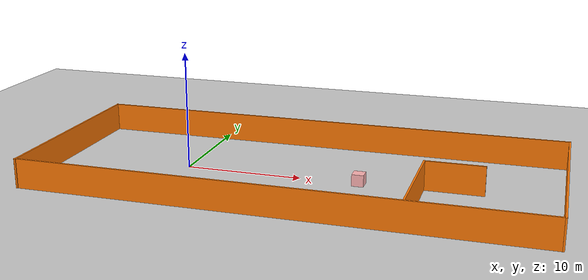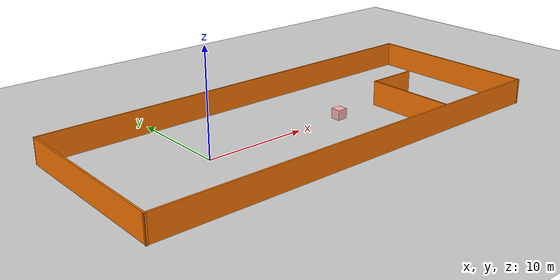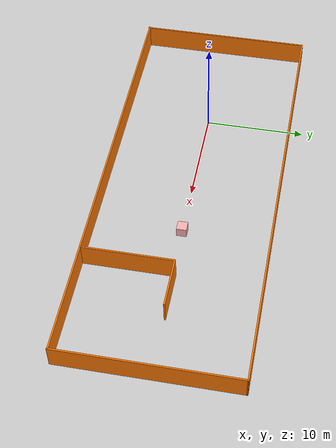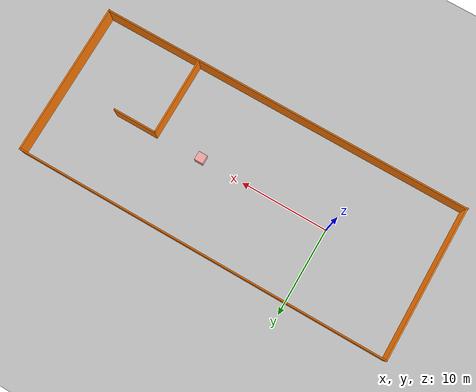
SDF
<sdf version="1.7">
 <world name="default">
  <light name="sun" type="directional">
   <pose>0 0 10 0 -0 0</pose>
   <diffuse>0.8 0.8 0.8 1</diffuse>
   <specular>0.2 0.2 0.2 1</specular>
   <attenuation>
    <range>1000</range>
    <constant>0.9</constant>
    <linear>0.01</linear>
    <quadratic>0.001</quadratic>
   </attenuation>
   <direction>-0.5 0.1 -0.9</direction>
   <spot><inner_angle>0</inner_angle><outer_angle>0</outer_angle><falloff>0</falloff></spot>
  </light>
  <model name="ground_plane">
   <static>1</static>
   <link name="link">
    <collision name="collision">
     <geometry><plane><normal>0 0 1</normal><size>100 100</size></plane></geometry>
     <surface><friction><ode><mu>100</mu><mu2>50</mu2></ode></friction></surface>
    </collision>
    <visual name="visual">
     <cast_shadows>0</cast_shadows>
     <geometry><plane><normal>0 0 1</normal><size>100 100</size></plane></geometry>
     <material>
      <script><uri>file://media/materials/scripts/gazebo.material</uri><name>Gazebo/Grey</name></script>
     </material>
    </visual>
   </link>
  </model>
  <gravity>0 0 -9.8</gravity>
  <magnetic_field>6e-06 2.3e-05 -4.2e-05</magnetic_field>
  <atmosphere type="adiabatic"/>
  <physics type="ode">
   <max_step_size>0.001</max_step_size>
   <real_time_factor>1</real_time_factor>
   <real_time_update_rate>1000</real_time_update_rate>
  </physics>
  <scene><ambient>0.4 0.4 0.4 1</ambient><background>0.7 0.7 0.7 1</background><shadows>1</shadows></scene>
  <spherical_coordinates>
   <surface_model>EARTH_WGS84</surface_model>
   <latitude_deg>0</latitude_deg>
   <longitude_deg>0</longitude_deg>
   <elevation>0</elevation>
   <heading_deg>0</heading_deg>
  </spherical_coordinates>
  <model name="selfdefine1">
   <link name="Wall_37">
    <pose>0.025291 8.67492 0 0 -0 0.002157</pose>
    <visual name="Wall_37_Visual">
     <pose>0 0 1.25 0 -0 0</pose>
     <geometry><box><size>42.6982 0.15 2.5</size></box></geometry>
     <material>
      <script><uri>file://media/materials/scripts/gazebo.material</uri><name>Gazebo/Grey</name></script>
      <ambient>0.996078 0.47451 0.0196078 1</ambient>
      <shader type="pixel"/>
     </material>
     <meta><layer>0</layer></meta>
    </visual>
    <collision name="Wall_37_Collision">
     <pose>0 0 1.25 0 -0 0</pose>
     <geometry><box><size>42.6982 0.15 2.5</size></box></geometry>
     <surface>
      <friction>
       <ode><mu>1</mu><mu2>1</mu2><fdir1>0 0 0</fdir1><slip1>0</slip1><slip2>0</slip2></ode>
       <torsional>
        <coefficient>1</coefficient>
        <patch_radius>0</patch_radius>
        <surface_radius>0</surface_radius>
        <use_patch_radius>1</use_patch_radius>
        <ode><slip>0</slip></ode>
       </torsional>
      </friction>
      <bounce><restitution_coefficient>0</restitution_coefficient><threshold>1e+06</threshold></bounce>
      <contact>
       <collide_without_contact>0</collide_without_contact>
       <collide_without_contact_bitmask>1</collide_without_contact_bitmask>
       <collide_bitmask>1</collide_bitmask>
       <ode>
        <soft_cfm>0</soft_cfm>
        <soft_erp>0.2</soft_erp>
        <kp>1e+13</kp>
        <kd>1</kd>
        <max_vel>0.01</max_vel>
        <min_depth>0</min_depth>
       </ode>
       <bullet>
        <split_impulse>1</split_impulse>
        <split_impulse_penetration_threshold>-0.01</split_impulse_penetration_threshold>
        <soft_cfm>0</soft_cfm>
        <soft_erp>0.2</soft_erp>
        <kp>1e+13</kp>
        <kd>1</kd>
       </bullet>
      </contact>
     </surface>
    </collision>
   </link>
   <link name="Wall_39">
    <pose>-21.2488 -0.045966 0 0 0 -1.5708</pose>
    <visual name="Wall_39_Visual">
     <pose>0 0 1.25 0 -0 0</pose>
     <geometry><box><size>17.5 0.15 2.5</size></box></geometry>
     <material>
      <script><uri>file://media/materials/scripts/gazebo.material</uri><name>Gazebo/Grey</name></script>
      <ambient>0.996078 0.47451 0.0196078 1</ambient>
      <shader type="pixel"/>
     </material>
     <meta><layer>0</layer></meta>
    </visual>
    <collision name="Wall_39_Collision">
     <pose>0 0 1.25 0 -0 0</pose>
     <geometry><box><size>17.5 0.15 2.5</size></box></geometry>
     <surface>
      <friction>
       <ode><mu>1</mu><mu2>1</mu2><fdir1>0 0 0</fdir1><slip1>0</slip1><slip2>0</slip2></ode>
       <torsional>
        <coefficient>1</coefficient>
        <patch_radius>0</patch_radius>
        <surface_radius>0</surface_radius>
        <use_patch_radius>1</use_patch_radius>
        <ode><slip>0</slip></ode>
       </torsional>
      </friction>
      <bounce><restitution_coefficient>0</restitution_coefficient><threshold>1e+06</threshold></bounce>
      <contact>
       <collide_without_contact>0</collide_without_contact>
       <collide_without_contact_bitmask>1</collide_without_contact_bitmask>
       <collide_bitmask>1</collide_bitmask>
       <ode>
        <soft_cfm>0</soft_cfm>
        <soft_erp>0.2</soft_erp>
        <kp>1e+13</kp>
        <kd>1</kd>
        <max_vel>0.01</max_vel>
        <min_depth>0</min_depth>
       </ode>
       <bullet>
        <split_impulse>1</split_impulse>
        <split_impulse_penetration_threshold>-0.01</split_impulse_penetration_threshold>
        <soft_cfm>0</soft_cfm>
        <soft_erp>0.2</soft_erp>
        <kp>1e+13</kp>
        <kd>1</kd>
       </bullet>
      </contact>
     </surface>
    </collision>
   </link>
   <link name="Wall_41">
    <pose>-2.1e-05 -8.64449 0 0 -0 0.000718</pose>
    <visual name="Wall_41_Visual">
     <pose>0 0 1.25 0 -0 0</pose>
     <geometry><box><size>42.7488 0.15 2.5</size></box></geometry>
     <material>
      <script><uri>file://media/materials/scripts/gazebo.material</uri><name>Gazebo/Grey</name></script>
      <ambient>0.996078 0.47451 0.0196078 1</ambient>
      <shader type="pixel"/>
     </material>
     <meta><layer>0</layer></meta>
    </visual>
    <collision name="Wall_41_Collision">
     <pose>0 0 1.25 0 -0 0</pose>
     <geometry><box><size>42.7488 0.15 2.5</size></box></geometry>
     <surface>
      <friction>
       <ode><mu>1</mu><mu2>1</mu2><fdir1>0 0 0</fdir1><slip1>0</slip1><slip2>0</slip2></ode>
       <torsional>
        <coefficient>1</coefficient>
        <patch_radius>0</patch_radius>
        <surface_radius>0</surface_radius>
        <use_patch_radius>1</use_patch_radius>
        <ode><slip>0</slip></ode>
       </torsional>
      </friction>
      <bounce><restitution_coefficient>0</restitution_coefficient><threshold>1e+06</threshold></bounce>
      <contact>
       <collide_without_contact>0</collide_without_contact>
       <collide_without_contact_bitmask>1</collide_without_contact_bitmask>
       <collide_bitmask>1</collide_bitmask>
       <ode>
        <soft_cfm>0</soft_cfm>
        <soft_erp>0.2</soft_erp>
        <kp>1e+13</kp>
        <kd>1</kd>
        <max_vel>0.01</max_vel>
        <min_depth>0</min_depth>
       </ode>
       <bullet>
        <split_impulse>1</split_impulse>
        <split_impulse_penetration_threshold>-0.01</split_impulse_penetration_threshold>
        <soft_cfm>0</soft_cfm>
        <soft_erp>0.2</soft_erp>
        <kp>1e+13</kp>
        <kd>1</kd>
       </bullet>
      </contact>
     </surface>
    </collision>
   </link>
   <link name="Wall_42">
    <pose>21.2994 0.015215 0 0 -0 1.5708</pose>
    <visual name="Wall_42_Visual">
     <pose>0 0 1.25 0 -0 0</pose>
     <geometry><box><size>17.5 0.15 2.5</size></box></geometry>
     <material>
      <script><uri>file://media/materials/scripts/gazebo.material</uri><name>Gazebo/Grey</name></script>
      <ambient>0.996078 0.47451 0.0196078 1</ambient>
      <shader type="pixel"/>
     </material>
     <meta><layer>0</layer></meta>
    </visual>
    <collision name="Wall_42_Collision">
     <pose>0 0 1.25 0 -0 0</pose>
     <geometry><box><size>17.5 0.15 2.5</size></box></geometry>
     <surface>
      <friction>
       <ode><mu>1</mu><mu2>1</mu2><fdir1>0 0 0</fdir1><slip1>0</slip1><slip2>0</slip2></ode>
       <torsional>
        <coefficient>1</coefficient>
        <patch_radius>0</patch_radius>
        <surface_radius>0</surface_radius>
        <use_patch_radius>1</use_patch_radius>
        <ode><slip>0</slip></ode>
       </torsional>
      </friction>
      <bounce><restitution_coefficient>0</restitution_coefficient><threshold>1e+06</threshold></bounce>
      <contact>
       <collide_without_contact>0</collide_without_contact>
       <collide_without_contact_bitmask>1</collide_without_contact_bitmask>
       <collide_bitmask>1</collide_bitmask>
       <ode>
        <soft_cfm>0</soft_cfm>
        <soft_erp>0.2</soft_erp>
        <kp>1e+13</kp>
        <kd>1</kd>
        <max_vel>0.01</max_vel>
        <min_depth>0</min_depth>
       </ode>
       <bullet>
        <split_impulse>1</split_impulse>
        <split_impulse_penetration_threshold>-0.01</split_impulse_penetration_threshold>
        <soft_cfm>0</soft_cfm>
        <soft_erp>0.2</soft_erp>
        <kp>1e+13</kp>
        <kd>1</kd>
       </bullet>
      </contact>
     </surface>
    </collision>
   </link>
   <link name="Wall_48">
    <pose>10.2345 -4.11049 0 0 -0 1.5708</pose>
    <visual name="Wall_48_Visual">
     <pose>0 0 1.25 0 -0 0</pose>
     <geometry><box><size>9 0.15 2.5</size></box></geometry>
     <material>
      <script><uri>file://media/materials/scripts/gazebo.material</uri><name>Gazebo/Grey</name></script>
      <ambient>0.996078 0.47451 0.0196078 1</ambient>
      <shader type="pixel"/>
     </material>
     <meta><layer>0</layer></meta>
    </visual>
    <collision name="Wall_48_Collision">
     <pose>0 0 1.25 0 -0 0</pose>
     <geometry><box><size>9 0.15 2.5</size></box></geometry>
     <surface>
      <friction>
       <ode><mu>1</mu><mu2>1</mu2><fdir1>0 0 0</fdir1><slip1>0</slip1><slip2>0</slip2></ode>
       <torsional>
        <coefficient>1</coefficient>
        <patch_radius>0</patch_radius>
        <surface_radius>0</surface_radius>
        <use_patch_radius>1</use_patch_radius>
        <ode><slip>0</slip></ode>
       </torsional>
      </friction>
      <bounce><restitution_coefficient>0</restitution_coefficient><threshold>1e+06</threshold></bounce>
      <contact>
       <collide_without_contact>0</collide_without_contact>
       <collide_without_contact_bitmask>1</collide_without_contact_bitmask>
       <collide_bitmask>1</collide_bitmask>
       <ode>
        <soft_cfm>0</soft_cfm>
        <soft_erp>0.2</soft_erp>
        <kp>1e+13</kp>
        <kd>1</kd>
        <max_vel>0.01</max_vel>
        <min_depth>0</min_depth>
       </ode>
       <bullet>
        <split_impulse>1</split_impulse>
        <split_impulse_penetration_threshold>-0.01</split_impulse_penetration_threshold>
        <soft_cfm>0</soft_cfm>
        <soft_erp>0.2</soft_erp>
        <kp>1e+13</kp>
        <kd>1</kd>
       </bullet>
      </contact>
     </surface>
    </collision>
   </link>
   <link name="Wall_50">
    <pose>12.6595 0.314514 0 0 -0 0</pose>
    <visual name="Wall_50_Visual">
     <pose>0 0 1.25 0 -0 0</pose>
     <geometry><box><size>5 0.15 2.5</size></box></geometry>
     <material>
      <script><uri>file://media/materials/scripts/gazebo.material</uri><name>Gazebo/Grey</name></script>
      <ambient>0.996078 0.47451 0.0196078 1</ambient>
      <shader type="pixel"/>
     </material>
     <meta><layer>0</layer></meta>
    </visual>
    <collision name="Wall_50_Collision">
     <pose>0 0 1.25 0 -0 0</pose>
     <geometry><box><size>5 0.15 2.5</size></box></geometry>
     <surface>
      <friction>
       <ode><mu>1</mu><mu2>1</mu2><fdir1>0 0 0</fdir1><slip1>0</slip1><slip2>0</slip2></ode>
       <torsional>
        <coefficient>1</coefficient>
        <patch_radius>0</patch_radius>
        <surface_radius>0</surface_radius>
        <use_patch_radius>1</use_patch_radius>
        <ode><slip>0</slip></ode>
       </torsional>
      </friction>
      <bounce><restitution_coefficient>0</restitution_coefficient><threshold>1e+06</threshold></bounce>
      <contact>
       <collide_without_contact>0</collide_without_contact>
       <collide_without_contact_bitmask>1</collide_without_contact_bitmask>
       <collide_bitmask>1</collide_bitmask>
       <ode>
        <soft_cfm>0</soft_cfm>
        <soft_erp>0.2</soft_erp>
        <kp>1e+13</kp>
        <kd>1</kd>
        <max_vel>0.01</max_vel>
        <min_depth>0</min_depth>
       </ode>
       <bullet>
        <split_impulse>1</split_impulse>
        <split_impulse_penetration_threshold>-0.01</split_impulse_penetration_threshold>
        <soft_cfm>0</soft_cfm>
        <soft_erp>0.2</soft_erp>
        <kp>1e+13</kp>
        <kd>1</kd>
       </bullet>
      </contact>
     </surface>
    </collision>
   </link>
   <link name="link_0">
    <inertial>
     <mass>1000</mass>
     <inertia><ixx>166.667</ixx><ixy>0</ixy><ixz>0</ixz><iyy>166.667</iyy><iyz>0</iyz><izz>166.667</izz></inertia>
    </inertial>
    <pose>5 0 0.5 0 -0 0</pose>
    <visual name="visual">
     <geometry><box><size>1 1 1</size></box></geometry>
     <material>
      <lighting>1</lighting>
      <script><uri>file://media/materials/scripts/gazebo.material</uri><name>Gazebo/Grey</name></script>
      <shader type="pixel"><normal_map>__default__</normal_map></shader>
      <ambient>1 0.3 0.3 1</ambient>
      <diffuse>1 0.7 0.7 1</diffuse>
      <specular>1 0.01 0.01 1</specular>
      <emissive>1 0 0 1</emissive>
     </material>
    </visual>
    <collision name="collision">
     <geometry><box><size>1 1 1</size></box></geometry>
     <surface>
      <friction>
       <ode><mu>1</mu><mu2>1</mu2><fdir1>0 0 0</fdir1><slip1>0</slip1><slip2>0</slip2></ode>
       <torsional>
        <coefficient>1</coefficient>
        <patch_radius>0</patch_radius>
        <surface_radius>0</surface_radius>
        <use_patch_radius>1</use_patch_radius>
        <ode><slip>0</slip></ode>
       </torsional>
      </friction>
      <bounce><restitution_coefficient>0</restitution_coefficient><threshold>1e+06</threshold></bounce>
      <contact>
       <collide_without_contact>0</collide_without_contact>
       <collide_without_contact_bitmask>1</collide_without_contact_bitmask>
       <collide_bitmask>1</collide_bitmask>
       <ode>
        <soft_cfm>0</soft_cfm>
        <soft_erp>0.2</soft_erp>
        <kp>1e+13</kp>
        <kd>1</kd>
        <max_vel>0.01</max_vel>
        <min_depth>0</min_depth>
       </ode>
       <bullet>
        <split_impulse>1</split_impulse>
        <split_impulse_penetration_threshold>-0.01</split_impulse_penetration_threshold>
        <soft_cfm>0</soft_cfm>
        <soft_erp>0.2</soft_erp>
        <kp>1e+13</kp>
        <kd>1</kd>
       </bullet>
      </contact>
     </surface>
    </collision>
   </link>
   <static>1</static>
   <pose>10 0 0 0 -0 0</pose>
  </model>
 </world>
</sdf>
